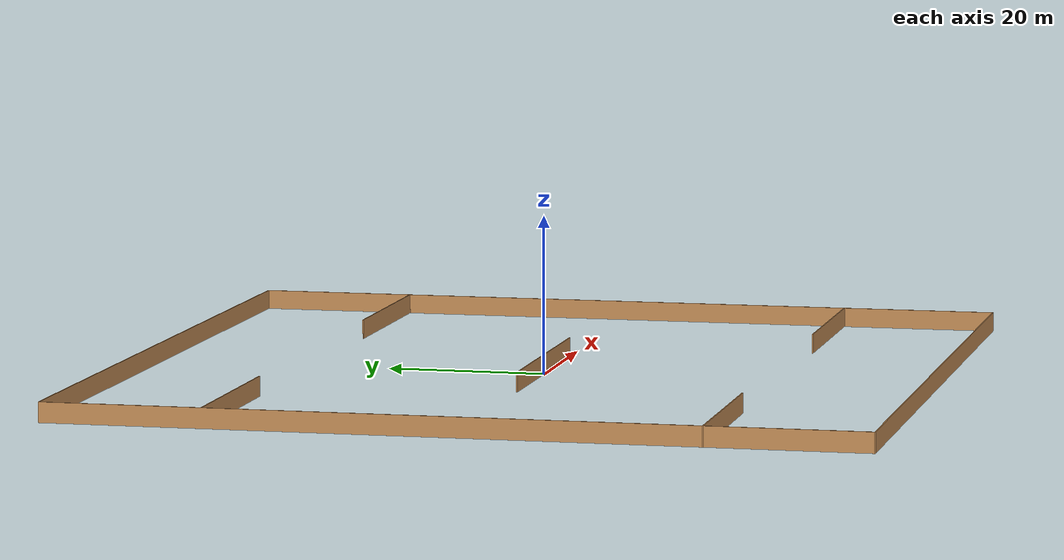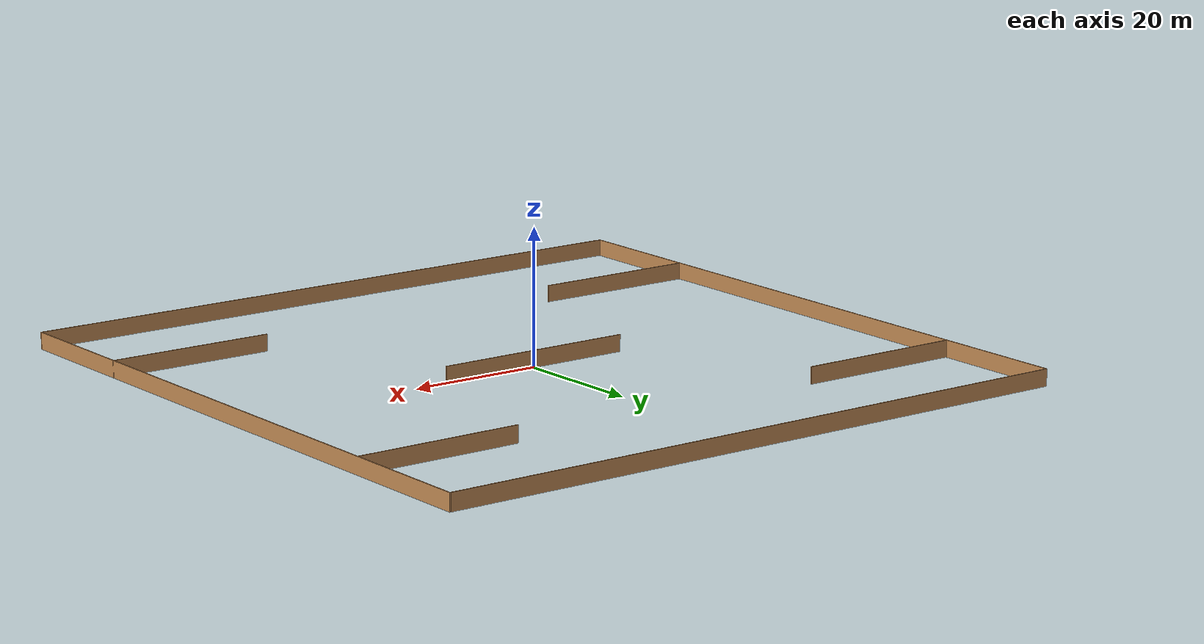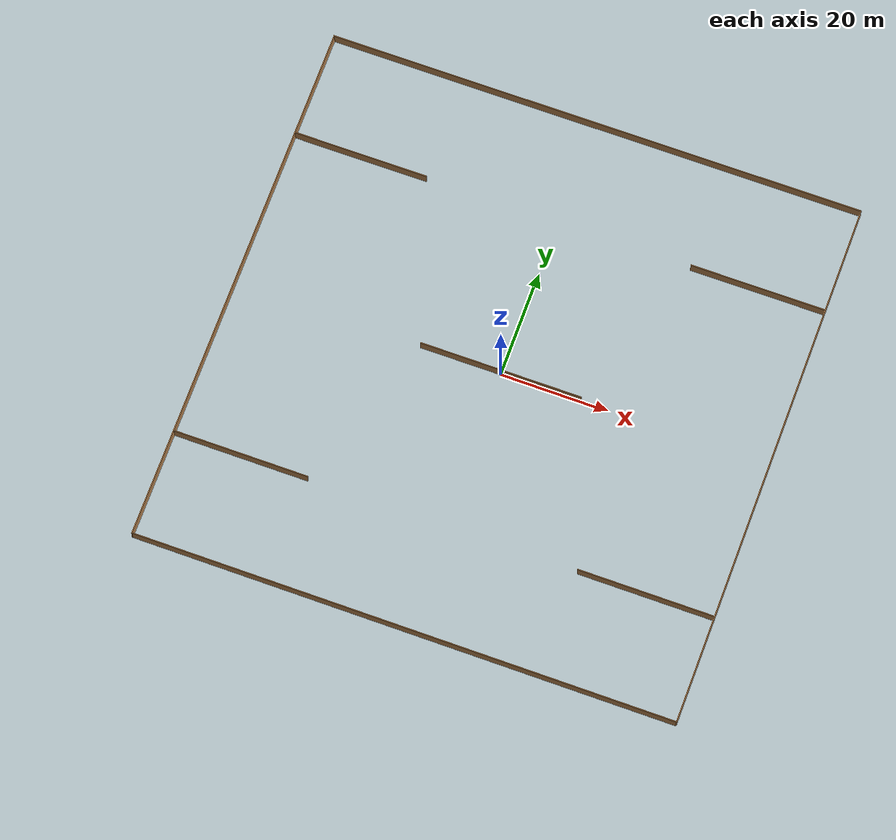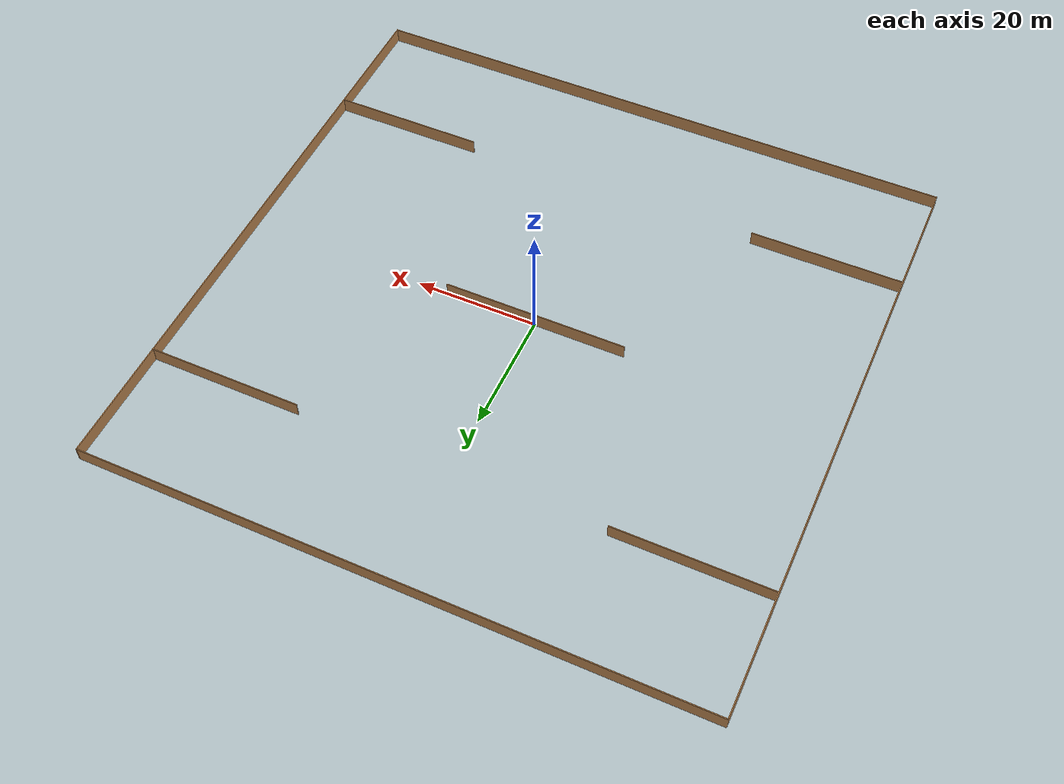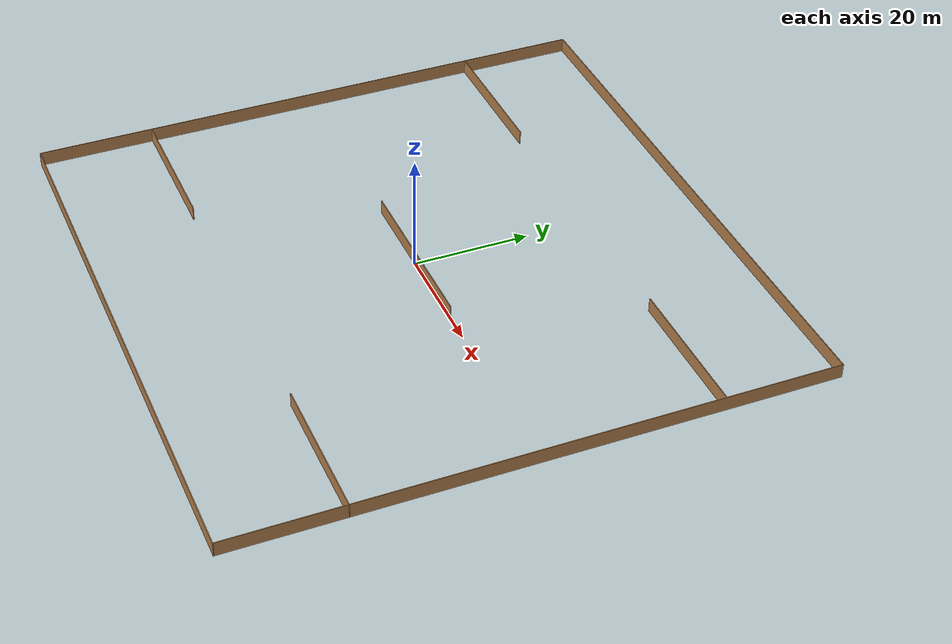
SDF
<?xml version='1.0'?>
<sdf version='1.7'>
  <model name='base_sim_world'>
    <pose>0 0 0 0 -0 0</pose>
    <link name='Wall_0'>
      <collision name='Wall_0_Collision'>
        <geometry>
          <box>
            <size>100.15 0.15 2.5</size>
          </box>
        </geometry>
        <pose>0 0 1.25 0 -0 0</pose>
      </collision>
      <visual name='Wall_0_Visual'>
        <pose>0 0 1.25 0 -0 0</pose>
        <geometry>
          <box>
            <size>100.15 0.15 2.5</size>
          </box>
        </geometry>
        <material>
          <script>
            <uri>file://media/materials/scripts/gazebo.material</uri>
            <name>Gazebo/Wood</name>
          </script>
          <ambient>1 1 1 1</ambient>
        </material>
        <meta>
          <layer>0</layer>
        </meta>
      </visual>
      <pose>0 -50 0 0 -0 0</pose>
    </link>
    <link name='Wall_10'>
      <collision name='Wall_10_Collision'>
        <geometry>
          <box>
            <size>25.15 0.15 2.5</size>
          </box>
        </geometry>
        <pose>0 0 1.25 0 -0 0</pose>
      </collision>
      <visual name='Wall_10_Visual'>
        <pose>0 0 1.25 0 -0 0</pose>
        <geometry>
          <box>
            <size>25.15 0.15 2.5</size>
          </box>
        </geometry>
        <material>
          <script>
            <uri>file://media/materials/scripts/gazebo.material</uri>
            <name>Gazebo/Wood</name>
          </script>
          <ambient>1 1 1 1</ambient>
        </material>
        <meta>
          <layer>0</layer>
        </meta>
      </visual>
      <pose>37.5 30 0 0 -0 0</pose>
    </link>
    <link name='Wall_12'>
      <collision name='Wall_12_Collision'>
        <geometry>
          <box>
            <size>25.15 0.15 2.5</size>
          </box>
        </geometry>
        <pose>0 0 1.25 0 -0 0</pose>
      </collision>
      <visual name='Wall_12_Visual'>
        <pose>0 0 1.25 0 -0 0</pose>
        <geometry>
          <box>
            <size>25.15 0.15 2.5</size>
          </box>
        </geometry>
        <material>
          <script>
            <uri>file://media/materials/scripts/gazebo.material</uri>
            <name>Gazebo/Wood</name>
          </script>
          <ambient>1 1 1 1</ambient>
        </material>
        <meta>
          <layer>0</layer>
        </meta>
      </visual>
      <pose>-37.5 -30 0 0 -0 0</pose>
    </link>
    <link name='Wall_14'>
      <collision name='Wall_14_Collision'>
        <geometry>
          <box>
            <size>25.15 0.15 2.5</size>
          </box>
        </geometry>
        <pose>0 0 1.25 0 -0 0</pose>
      </collision>
      <visual name='Wall_14_Visual'>
        <pose>0 0 1.25 0 -0 0</pose>
        <geometry>
          <box>
            <size>25.15 0.15 2.5</size>
          </box>
        </geometry>
        <material>
          <script>
            <uri>file://media/materials/scripts/gazebo.material</uri>
            <name>Gazebo/Wood</name>
          </script>
          <ambient>1 1 1 1</ambient>
        </material>
        <meta>
          <layer>0</layer>
        </meta>
      </visual>
      <pose>37.5 -30 0 0 -0 0</pose>
    </link>
    <link name='Wall_16'>
      <collision name='Wall_16_Collision'>
        <geometry>
          <box>
            <size>30.15 0.15 2.5</size>
          </box>
        </geometry>
        <pose>0 0 1.25 0 -0 0</pose>
      </collision>
      <visual name='Wall_16_Visual'>
        <pose>0 0 1.25 0 -0 0</pose>
        <geometry>
          <box>
            <size>30.15 0.15 2.5</size>
          </box>
        </geometry>
        <material>
          <script>
            <uri>file://media/materials/scripts/gazebo.material</uri>
            <name>Gazebo/Wood</name>
          </script>
          <ambient>1 1 1 1</ambient>
        </material>
        <meta>
          <layer>0</layer>
        </meta>
      </visual>
      <pose>0 0 0 0 -0 3.14159</pose>
    </link>
    <link name='Wall_2'>
      <collision name='Wall_2_Collision'>
        <geometry>
          <box>
            <size>100.15 0.15 2.5</size>
          </box>
        </geometry>
        <pose>0 0 1.25 0 -0 0</pose>
      </collision>
      <visual name='Wall_2_Visual'>
        <pose>0 0 1.25 0 -0 0</pose>
        <geometry>
          <box>
            <size>100.15 0.15 2.5</size>
          </box>
        </geometry>
        <material>
          <script>
            <uri>file://media/materials/scripts/gazebo.material</uri>
            <name>Gazebo/Wood</name>
          </script>
          <ambient>1 1 1 1</ambient>
        </material>
        <meta>
          <layer>0</layer>
        </meta>
      </visual>
      <pose>0 50 0 0 -0 3.14159</pose>
    </link>
    <link name='Wall_4'>
      <collision name='Wall_4_Collision'>
        <geometry>
          <box>
            <size>100.15 0.15 2.5</size>
          </box>
        </geometry>
        <pose>0 0 1.25 0 -0 0</pose>
      </collision>
      <visual name='Wall_4_Visual'>
        <pose>0 0 1.25 0 -0 0</pose>
        <geometry>
          <box>
            <size>100.15 0.15 2.5</size>
          </box>
        </geometry>
        <material>
          <script>
            <uri>file://media/materials/scripts/gazebo.material</uri>
            <name>Gazebo/Wood</name>
          </script>
          <ambient>1 1 1 1</ambient>
        </material>
        <meta>
          <layer>0</layer>
        </meta>
      </visual>
      <pose>50 0 0 0 -0 -1.5708</pose>
    </link>
    <link name='Wall_6'>
      <collision name='Wall_6_Collision'>
        <geometry>
          <box>
            <size>100.15 0.15 2.5</size>
          </box>
        </geometry>
        <pose>0 0 1.25 0 -0 0</pose>
      </collision>
      <visual name='Wall_6_Visual'>
        <pose>0 0 1.25 0 -0 0</pose>
        <geometry>
          <box>
            <size>100.15 0.15 2.5</size>
          </box>
        </geometry>
        <material>
          <script>
            <uri>file://media/materials/scripts/gazebo.material</uri>
            <name>Gazebo/Wood</name>
          </script>
          <ambient>1 1 1 1</ambient>
        </material>
        <meta>
          <layer>0</layer>
        </meta>
      </visual>
      <pose>-50 0 0 0 -0 1.5708</pose>
    </link>
    <link name='Wall_8'>
      <collision name='Wall_8_Collision'>
        <geometry>
          <box>
            <size>25.15 0.15 2.5</size>
          </box>
        </geometry>
        <pose>0 0 1.25 0 -0 0</pose>
      </collision>
      <visual name='Wall_8_Visual'>
        <pose>0 0 1.25 0 -0 0</pose>
        <geometry>
          <box>
            <size>25.15 0.15 2.5</size>
          </box>
        </geometry>
        <material>
          <script>
            <uri>file://media/materials/scripts/gazebo.material</uri>
            <name>Gazebo/Wood</name>
          </script>
          <ambient>1 1 1 1</ambient>
        </material>
        <meta>
          <layer>0</layer>
        </meta>
      </visual>
      <pose>-37.5 30 0 0 -0 0</pose>
    </link>
    <static>1</static>
  </model>
</sdf>
